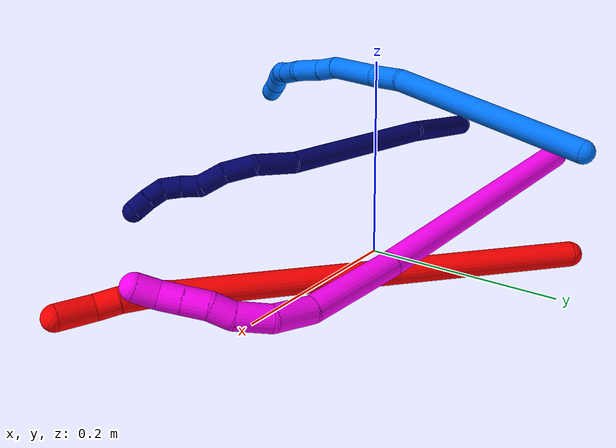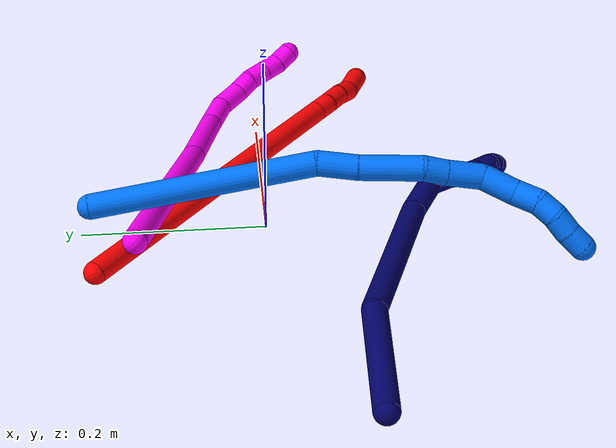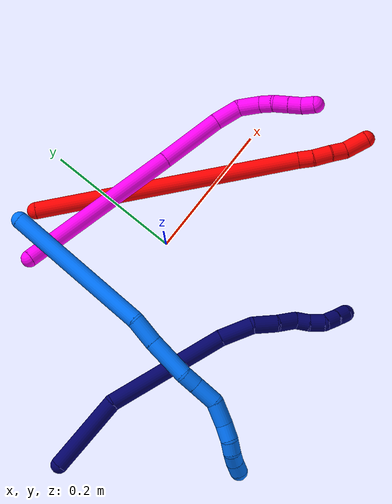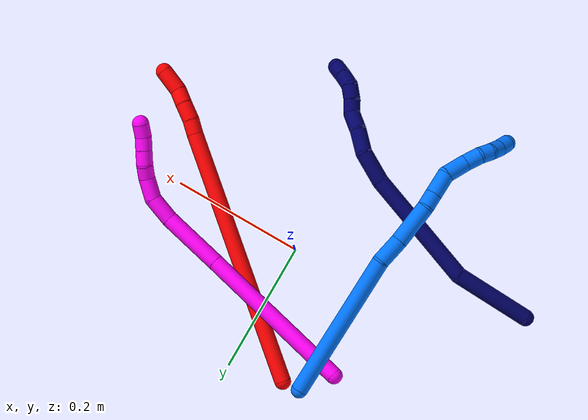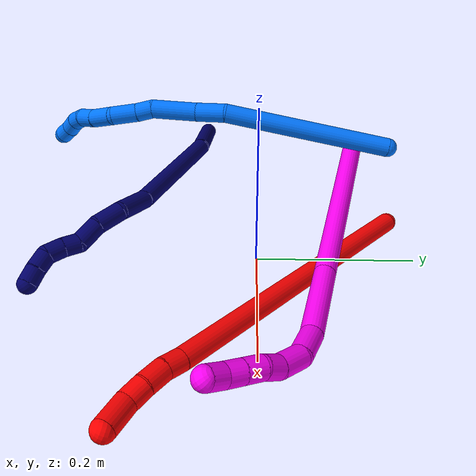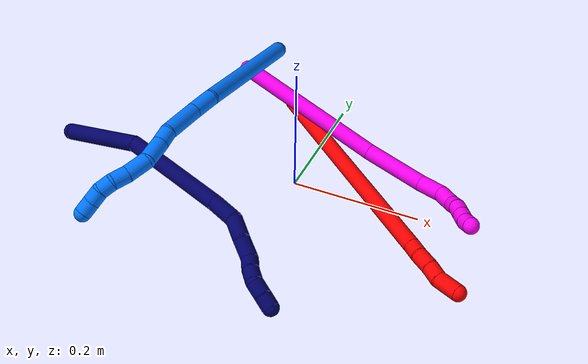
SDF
<sdf version="1.7">
 <world name="default">
  <model name="2">
   <static>0</static>
   <link name="2">
    <collision name="collision-cylinder-e_1_1_4">
     <pose>0.109304 -0.102235 0.127267 0.676757 0.59001 0.213063</pose>
     <geometry><cylinder><radius>0.0125</radius><length>0.39292</length></cylinder></geometry>
     <surface>
      <friction><ode><mu>1.16</mu><mu2>1.16</mu2><slip1>0</slip1><slip2>0</slip2></ode></friction>
      <contact><ode><kp>1e+06</kp><kd>1</kd><max_vel>0</max_vel><min_depth>0.001</min_depth></ode></contact>
     </surface>
    </collision>
    <visual name="visual-cylinder-e_1_1_4">
     <pose>0.109304 -0.102235 0.127267 0.676757 0.59001 0.213063</pose>
     <geometry><cylinder><radius>0.0125</radius><length>0.39292</length></cylinder></geometry>
     <material><ambient>1 0 0 1</ambient></material>
    </visual>
    <collision name="collision-cylinder-e_2_4_5">
     <pose>0.224383 -0.209717 0.262384 0.589149 0.548893 0.170432</pose>
     <geometry><cylinder><radius>0.0125</radius><length>0.022134</length></cylinder></geometry>
     <surface>
      <friction><ode><mu>1.16</mu><mu2>1.16</mu2><slip1>0</slip1><slip2>0</slip2></ode></friction>
      <contact><ode><kp>1e+06</kp><kd>1</kd><max_vel>0</max_vel><min_depth>0.001</min_depth></ode></contact>
     </surface>
    </collision>
    <visual name="visual-cylinder-e_2_4_5">
     <pose>0.224383 -0.209717 0.262384 0.589149 0.548893 0.170432</pose>
     <geometry><cylinder><radius>0.0125</radius><length>0.022134</length></cylinder></geometry>
     <material><ambient>1 0 0 1</ambient></material>
    </visual>
    <collision name="collision-cylinder-e_3_5_6">
     <pose>0.23818 -0.222449 0.277899 0.773605 0.642762 0.269569</pose>
     <geometry><cylinder><radius>0.0125</radius><length>0.026772</length></cylinder></geometry>
     <surface>
      <friction><ode><mu>1.16</mu><mu2>1.16</mu2><slip1>0</slip1><slip2>0</slip2></ode></friction>
      <contact><ode><kp>1e+06</kp><kd>1</kd><max_vel>0</max_vel><min_depth>0.001</min_depth></ode></contact>
     </surface>
    </collision>
    <visual name="visual-cylinder-e_3_5_6">
     <pose>0.23818 -0.222449 0.277899 0.773605 0.642762 0.269569</pose>
     <geometry><cylinder><radius>0.0125</radius><length>0.026772</length></cylinder></geometry>
     <material><ambient>1 0 0 1</ambient></material>
    </visual>
    <collision name="collision-cylinder-e_4_6_7">
     <pose>0.252093 -0.237558 0.291455 0.912857 0.548701 0.274647</pose>
     <geometry><cylinder><radius>0.0125</radius><length>0.022581</length></cylinder></geometry>
     <surface>
      <friction><ode><mu>1.16</mu><mu2>1.16</mu2><slip1>0</slip1><slip2>0</slip2></ode></friction>
      <contact><ode><kp>1e+06</kp><kd>1</kd><max_vel>0</max_vel><min_depth>0.001</min_depth></ode></contact>
     </surface>
    </collision>
    <visual name="visual-cylinder-e_4_6_7">
     <pose>0.252093 -0.237558 0.291455 0.912857 0.548701 0.274647</pose>
     <geometry><cylinder><radius>0.0125</radius><length>0.022581</length></cylinder></geometry>
     <material><ambient>1 0 0 1</ambient></material>
    </visual>
    <collision name="collision-cylinder-e_5_7_2">
     <pose>0.271394 -0.254141 0.304865 0.872675 0.85359 0.417919</pose>
     <geometry><cylinder><radius>0.0125</radius><length>0.035593</length></cylinder></geometry>
     <surface>
      <friction><ode><mu>1.16</mu><mu2>1.16</mu2><slip1>0</slip1><slip2>0</slip2></ode></friction>
      <contact><ode><kp>1e+06</kp><kd>1</kd><max_vel>0</max_vel><min_depth>0.001</min_depth></ode></contact>
     </surface>
    </collision>
    <visual name="visual-cylinder-e_5_7_2">
     <pose>0.271394 -0.254141 0.304865 0.872675 0.85359 0.417919</pose>
     <geometry><cylinder><radius>0.0125</radius><length>0.035593</length></cylinder></geometry>
     <material><ambient>1 0 0 1</ambient></material>
    </visual>
    <collision name="collision-sphere-2">
     <pose>0.284806 -0.263102 0.312383 0 -0 0</pose>
     <geometry><sphere><radius>0.0125</radius></sphere></geometry>
     <surface>
      <friction><ode><mu>1.16</mu><mu2>1.16</mu2><slip1>0</slip1><slip2>0</slip2></ode></friction>
      <contact><ode><kp>1e+06</kp><kd>1</kd><max_vel>0</max_vel><min_depth>0.001</min_depth></ode></contact>
     </surface>
    </collision>
    <visual name="visual-sphere-2">
     <pose>0.284806 -0.263102 0.312383 0 -0 0</pose>
     <geometry><sphere><radius>0.0125</radius></sphere></geometry>
     <material><ambient>1 0 0 1</ambient></material>
    </visual>
    <collision name="collision-sphere-7">
     <pose>0.257982 -0.245181 0.297346 0 -0 0</pose>
     <geometry><sphere><radius>0.0125</radius></sphere></geometry>
     <surface>
      <friction><ode><mu>1.16</mu><mu2>1.16</mu2><slip1>0</slip1><slip2>0</slip2></ode></friction>
      <contact><ode><kp>1e+06</kp><kd>1</kd><max_vel>0</max_vel><min_depth>0.001</min_depth></ode></contact>
     </surface>
    </collision>
    <visual name="visual-sphere-7">
     <pose>0.257982 -0.245181 0.297346 0 -0 0</pose>
     <geometry><sphere><radius>0.0125</radius></sphere></geometry>
     <material><ambient>1 0 0 1</ambient></material>
    </visual>
    <collision name="collision-sphere-6">
     <pose>0.246204 -0.229936 0.285564 0 -0 0</pose>
     <geometry><sphere><radius>0.0125</radius></sphere></geometry>
     <surface>
      <friction><ode><mu>1.16</mu><mu2>1.16</mu2><slip1>0</slip1><slip2>0</slip2></ode></friction>
      <contact><ode><kp>1e+06</kp><kd>1</kd><max_vel>0</max_vel><min_depth>0.001</min_depth></ode></contact>
     </surface>
    </collision>
    <visual name="visual-sphere-6">
     <pose>0.246204 -0.229936 0.285564 0 -0 0</pose>
     <geometry><sphere><radius>0.0125</radius></sphere></geometry>
     <material><ambient>1 0 0 1</ambient></material>
    </visual>
    <collision name="collision-sphere-5">
     <pose>0.230157 -0.214963 0.270234 0 -0 0</pose>
     <geometry><sphere><radius>0.0125</radius></sphere></geometry>
     <surface>
      <friction><ode><mu>1.16</mu><mu2>1.16</mu2><slip1>0</slip1><slip2>0</slip2></ode></friction>
      <contact><ode><kp>1e+06</kp><kd>1</kd><max_vel>0</max_vel><min_depth>0.001</min_depth></ode></contact>
     </surface>
    </collision>
    <visual name="visual-sphere-5">
     <pose>0.230157 -0.214963 0.270234 0 -0 0</pose>
     <geometry><sphere><radius>0.0125</radius></sphere></geometry>
     <material><ambient>1 0 0 1</ambient></material>
    </visual>
    <collision name="collision-sphere-1">
     <geometry><sphere><radius>0.0125</radius></sphere></geometry>
     <surface>
      <friction><ode><mu>1.16</mu><mu2>1.16</mu2><slip1>0</slip1><slip2>0</slip2></ode></friction>
      <contact><ode><kp>1e+06</kp><kd>1</kd><max_vel>0</max_vel><min_depth>0.001</min_depth></ode></contact>
     </surface>
    </collision>
    <visual name="visual-sphere-1">
     <geometry><sphere><radius>0.0125</radius></sphere></geometry>
     <material><ambient>1 0 0 1</ambient></material>
    </visual>
    <collision name="collision-sphere-4">
     <pose>0.218608 -0.204471 0.254535 0 -0 0</pose>
     <geometry><sphere><radius>0.0125</radius></sphere></geometry>
     <surface>
      <friction><ode><mu>1.16</mu><mu2>1.16</mu2><slip1>0</slip1><slip2>0</slip2></ode></friction>
      <contact><ode><kp>1e+06</kp><kd>1</kd><max_vel>0</max_vel><min_depth>0.001</min_depth></ode></contact>
     </surface>
    </collision>
    <visual name="visual-sphere-4">
     <pose>0.218608 -0.204471 0.254535 0 -0 0</pose>
     <geometry><sphere><radius>0.0125</radius></sphere></geometry>
     <material><ambient>1 0 0 1</ambient></material>
    </visual>
    <inertial>
     <pose>0.139286 -0.130355 0.161372 0 -0 0</pose>
     <mass>0.5</mass>
     <inertia>
      <ixx>0.005042</ixx>
      <ixy>0</ixy>
      <ixz>0</ixz>
      <iyy>0.005119</iyy>
      <iyz>0</iyz>
      <izz>-0.000159</izz>
     </inertia>
    </inertial>
   </link>
   <pose>-0.082241 0.179906 0.011491 1.09153 -0.304214 0.246898</pose>
  </model>
  <model name="7">
   <static>0</static>
   <link name="7">
    <collision name="collision-cylinder-e_1_1_4">
     <pose>0.057534 -0.013989 -0.005983 1.97494 1.31228 1.72436</pose>
     <geometry><cylinder><radius>0.0125</radius><length>0.119024</length></cylinder></geometry>
     <surface>
      <friction><ode><mu>1.16</mu><mu2>1.16</mu2><slip1>0</slip1><slip2>0</slip2></ode></friction>
      <contact><ode><kp>1e+06</kp><kd>1</kd><max_vel>0</max_vel><min_depth>0.001</min_depth></ode></contact>
     </surface>
    </collision>
    <visual name="visual-cylinder-e_1_1_4">
     <pose>0.057534 -0.013989 -0.005983 1.97494 1.31228 1.72436</pose>
     <geometry><cylinder><radius>0.0125</radius><length>0.119024</length></cylinder></geometry>
     <material><ambient>0.003922 0 0.403922 1</ambient></material>
    </visual>
    <collision name="collision-cylinder-e_2_4_5">
     <pose>0.188951 -0.079775 -0.017713 1.68131 0.95646 1.04977</pose>
     <geometry><cylinder><radius>0.0125</radius><length>0.180829</length></cylinder></geometry>
     <surface>
      <friction><ode><mu>1.16</mu><mu2>1.16</mu2><slip1>0</slip1><slip2>0</slip2></ode></friction>
      <contact><ode><kp>1e+06</kp><kd>1</kd><max_vel>0</max_vel><min_depth>0.001</min_depth></ode></contact>
     </surface>
    </collision>
    <visual name="visual-cylinder-e_2_4_5">
     <pose>0.188951 -0.079775 -0.017713 1.68131 0.95646 1.04977</pose>
     <geometry><cylinder><radius>0.0125</radius><length>0.180829</length></cylinder></geometry>
     <material><ambient>0.003922 0 0.403922 1</ambient></material>
    </visual>
    <collision name="collision-cylinder-e_3_5_6">
     <pose>0.282017 -0.146573 -0.020149 1.35347 0.895615 0.736511</pose>
     <geometry><cylinder><radius>0.0125</radius><length>0.049151</length></cylinder></geometry>
     <surface>
      <friction><ode><mu>1.16</mu><mu2>1.16</mu2><slip1>0</slip1><slip2>0</slip2></ode></friction>
      <contact><ode><kp>1e+06</kp><kd>1</kd><max_vel>0</max_vel><min_depth>0.001</min_depth></ode></contact>
     </surface>
    </collision>
    <visual name="visual-cylinder-e_3_5_6">
     <pose>0.282017 -0.146573 -0.020149 1.35347 0.895615 0.736511</pose>
     <geometry><cylinder><radius>0.0125</radius><length>0.049151</length></cylinder></geometry>
     <material><ambient>0.003922 0 0.403922 1</ambient></material>
    </visual>
    <collision name="collision-cylinder-e_4_6_7">
     <pose>0.309695 -0.177235 -0.015613 1.49276 0.495644 0.459747</pose>
     <geometry><cylinder><radius>0.0125</radius><length>0.03572</length></cylinder></geometry>
     <surface>
      <friction><ode><mu>1.16</mu><mu2>1.16</mu2><slip1>0</slip1><slip2>0</slip2></ode></friction>
      <contact><ode><kp>1e+06</kp><kd>1</kd><max_vel>0</max_vel><min_depth>0.001</min_depth></ode></contact>
     </surface>
    </collision>
    <visual name="visual-cylinder-e_4_6_7">
     <pose>0.309695 -0.177235 -0.015613 1.49276 0.495644 0.459747</pose>
     <geometry><cylinder><radius>0.0125</radius><length>0.03572</length></cylinder></geometry>
     <material><ambient>0.003922 0 0.403922 1</ambient></material>
    </visual>
    <collision name="collision-cylinder-e_5_7_8">
     <pose>0.324754 -0.206689 -0.017163 1.76939 0.436635 0.529191</pose>
     <geometry><cylinder><radius>0.0125</radius><length>0.031049</length></cylinder></geometry>
     <surface>
      <friction><ode><mu>1.16</mu><mu2>1.16</mu2><slip1>0</slip1><slip2>0</slip2></ode></friction>
      <contact><ode><kp>1e+06</kp><kd>1</kd><max_vel>0</max_vel><min_depth>0.001</min_depth></ode></contact>
     </surface>
    </collision>
    <visual name="visual-cylinder-e_5_7_8">
     <pose>0.324754 -0.206689 -0.017163 1.76939 0.436635 0.529191</pose>
     <geometry><cylinder><radius>0.0125</radius><length>0.031049</length></cylinder></geometry>
     <material><ambient>0.003922 0 0.403922 1</ambient></material>
    </visual>
    <collision name="collision-cylinder-e_6_8_9">
     <pose>0.334744 -0.229594 -0.01653 1.21289 0.338498 0.235962</pose>
     <geometry><cylinder><radius>0.0125</radius><length>0.02063</length></cylinder></geometry>
     <surface>
      <friction><ode><mu>1.16</mu><mu2>1.16</mu2><slip1>0</slip1><slip2>0</slip2></ode></friction>
      <contact><ode><kp>1e+06</kp><kd>1</kd><max_vel>0</max_vel><min_depth>0.001</min_depth></ode></contact>
     </surface>
    </collision>
    <visual name="visual-cylinder-e_6_8_9">
     <pose>0.334744 -0.229594 -0.01653 1.21289 0.338498 0.235962</pose>
     <geometry><cylinder><radius>0.0125</radius><length>0.02063</length></cylinder></geometry>
     <material><ambient>0.003922 0 0.403922 1</ambient></material>
    </visual>
    <collision name="collision-cylinder-e_7_9_10">
     <pose>0.343332 -0.248293 -0.010967 1.34966 0.483761 0.389798</pose>
     <geometry><cylinder><radius>0.0125</radius><length>0.022199</length></cylinder></geometry>
     <surface>
      <friction><ode><mu>1.16</mu><mu2>1.16</mu2><slip1>0</slip1><slip2>0</slip2></ode></friction>
      <contact><ode><kp>1e+06</kp><kd>1</kd><max_vel>0</max_vel><min_depth>0.001</min_depth></ode></contact>
     </surface>
    </collision>
    <visual name="visual-cylinder-e_7_9_10">
     <pose>0.343332 -0.248293 -0.010967 1.34966 0.483761 0.389798</pose>
     <geometry><cylinder><radius>0.0125</radius><length>0.022199</length></cylinder></geometry>
     <material><ambient>0.003922 0 0.403922 1</ambient></material>
    </visual>
    <collision name="collision-cylinder-e_8_10_11">
     <pose>0.354021 -0.266308 -0.012151 1.94801 0.547454 0.783744</pose>
     <geometry><cylinder><radius>0.0125</radius><length>0.021235</length></cylinder></geometry>
     <surface>
      <friction><ode><mu>1.16</mu><mu2>1.16</mu2><slip1>0</slip1><slip2>0</slip2></ode></friction>
      <contact><ode><kp>1e+06</kp><kd>1</kd><max_vel>0</max_vel><min_depth>0.001</min_depth></ode></contact>
     </surface>
    </collision>
    <visual name="visual-cylinder-e_8_10_11">
     <pose>0.354021 -0.266308 -0.012151 1.94801 0.547454 0.783744</pose>
     <geometry><cylinder><radius>0.0125</radius><length>0.021235</length></cylinder></geometry>
     <material><ambient>0.003922 0 0.403922 1</ambient></material>
    </visual>
    <collision name="collision-cylinder-e_9_11_2">
     <pose>0.364339 -0.282568 -0.019657 2.05982 0.495261 0.796821</pose>
     <geometry><cylinder><radius>0.0125</radius><length>0.020165</length></cylinder></geometry>
     <surface>
      <friction><ode><mu>1.16</mu><mu2>1.16</mu2><slip1>0</slip1><slip2>0</slip2></ode></friction>
      <contact><ode><kp>1e+06</kp><kd>1</kd><max_vel>0</max_vel><min_depth>0.001</min_depth></ode></contact>
     </surface>
    </collision>
    <visual name="visual-cylinder-e_9_11_2">
     <pose>0.364339 -0.282568 -0.019657 2.05982 0.495261 0.796821</pose>
     <geometry><cylinder><radius>0.0125</radius><length>0.020165</length></cylinder></geometry>
     <material><ambient>0.003922 0 0.403922 1</ambient></material>
    </visual>
    <collision name="collision-sphere-2">
     <pose>0.369131 -0.290399 -0.023824 0 -0 0</pose>
     <geometry><sphere><radius>0.0125</radius></sphere></geometry>
     <surface>
      <friction><ode><mu>1.16</mu><mu2>1.16</mu2><slip1>0</slip1><slip2>0</slip2></ode></friction>
      <contact><ode><kp>1e+06</kp><kd>1</kd><max_vel>0</max_vel><min_depth>0.001</min_depth></ode></contact>
     </surface>
    </collision>
    <visual name="visual-sphere-2">
     <pose>0.369131 -0.290399 -0.023824 0 -0 0</pose>
     <geometry><sphere><radius>0.0125</radius></sphere></geometry>
     <material><ambient>0.003922 0 0.403922 1</ambient></material>
    </visual>
    <collision name="collision-sphere-11">
     <pose>0.359548 -0.274737 -0.01549 0 -0 0</pose>
     <geometry><sphere><radius>0.0125</radius></sphere></geometry>
     <surface>
      <friction><ode><mu>1.16</mu><mu2>1.16</mu2><slip1>0</slip1><slip2>0</slip2></ode></friction>
      <contact><ode><kp>1e+06</kp><kd>1</kd><max_vel>0</max_vel><min_depth>0.001</min_depth></ode></contact>
     </surface>
    </collision>
    <visual name="visual-sphere-11">
     <pose>0.359548 -0.274737 -0.01549 0 -0 0</pose>
     <geometry><sphere><radius>0.0125</radius></sphere></geometry>
     <material><ambient>0.003922 0 0.403922 1</ambient></material>
    </visual>
    <collision name="collision-sphere-10">
     <pose>0.348495 -0.25788 -0.008811 0 -0 0</pose>
     <geometry><sphere><radius>0.0125</radius></sphere></geometry>
     <surface>
      <friction><ode><mu>1.16</mu><mu2>1.16</mu2><slip1>0</slip1><slip2>0</slip2></ode></friction>
      <contact><ode><kp>1e+06</kp><kd>1</kd><max_vel>0</max_vel><min_depth>0.001</min_depth></ode></contact>
     </surface>
    </collision>
    <visual name="visual-sphere-10">
     <pose>0.348495 -0.25788 -0.008811 0 -0 0</pose>
     <geometry><sphere><radius>0.0125</radius></sphere></geometry>
     <material><ambient>0.003922 0 0.403922 1</ambient></material>
    </visual>
    <collision name="collision-sphere-9">
     <pose>0.33817 -0.238707 -0.013122 0 -0 0</pose>
     <geometry><sphere><radius>0.0125</radius></sphere></geometry>
     <surface>
      <friction><ode><mu>1.16</mu><mu2>1.16</mu2><slip1>0</slip1><slip2>0</slip2></ode></friction>
      <contact><ode><kp>1e+06</kp><kd>1</kd><max_vel>0</max_vel><min_depth>0.001</min_depth></ode></contact>
     </surface>
    </collision>
    <visual name="visual-sphere-9">
     <pose>0.33817 -0.238707 -0.013122 0 -0 0</pose>
     <geometry><sphere><radius>0.0125</radius></sphere></geometry>
     <material><ambient>0.003922 0 0.403922 1</ambient></material>
    </visual>
    <collision name="collision-sphere-4">
     <pose>0.115068 -0.027977 -0.011965 0 -0 0</pose>
     <geometry><sphere><radius>0.0125</radius></sphere></geometry>
     <surface>
      <friction><ode><mu>1.16</mu><mu2>1.16</mu2><slip1>0</slip1><slip2>0</slip2></ode></friction>
      <contact><ode><kp>1e+06</kp><kd>1</kd><max_vel>0</max_vel><min_depth>0.001</min_depth></ode></contact>
     </surface>
    </collision>
    <visual name="visual-sphere-4">
     <pose>0.115068 -0.027977 -0.011965 0 -0 0</pose>
     <geometry><sphere><radius>0.0125</radius></sphere></geometry>
     <material><ambient>0.003922 0 0.403922 1</ambient></material>
    </visual>
    <collision name="collision-sphere-1">
     <geometry><sphere><radius>0.0125</radius></sphere></geometry>
     <surface>
      <friction><ode><mu>1.16</mu><mu2>1.16</mu2><slip1>0</slip1><slip2>0</slip2></ode></friction>
      <contact><ode><kp>1e+06</kp><kd>1</kd><max_vel>0</max_vel><min_depth>0.001</min_depth></ode></contact>
     </surface>
    </collision>
    <visual name="visual-sphere-1">
     <geometry><sphere><radius>0.0125</radius></sphere></geometry>
     <material><ambient>0.003922 0 0.403922 1</ambient></material>
    </visual>
    <collision name="collision-sphere-8">
     <pose>0.331319 -0.22048 -0.019939 0 -0 0</pose>
     <geometry><sphere><radius>0.0125</radius></sphere></geometry>
     <surface>
      <friction><ode><mu>1.16</mu><mu2>1.16</mu2><slip1>0</slip1><slip2>0</slip2></ode></friction>
      <contact><ode><kp>1e+06</kp><kd>1</kd><max_vel>0</max_vel><min_depth>0.001</min_depth></ode></contact>
     </surface>
    </collision>
    <visual name="visual-sphere-8">
     <pose>0.331319 -0.22048 -0.019939 0 -0 0</pose>
     <geometry><sphere><radius>0.0125</radius></sphere></geometry>
     <material><ambient>0.003922 0 0.403922 1</ambient></material>
    </visual>
    <collision name="collision-sphere-5">
     <pose>0.262834 -0.131574 -0.023461 0 -0 0</pose>
     <geometry><sphere><radius>0.0125</radius></sphere></geometry>
     <surface>
      <friction><ode><mu>1.16</mu><mu2>1.16</mu2><slip1>0</slip1><slip2>0</slip2></ode></friction>
      <contact><ode><kp>1e+06</kp><kd>1</kd><max_vel>0</max_vel><min_depth>0.001</min_depth></ode></contact>
     </surface>
    </collision>
    <visual name="visual-sphere-5">
     <pose>0.262834 -0.131574 -0.023461 0 -0 0</pose>
     <geometry><sphere><radius>0.0125</radius></sphere></geometry>
     <material><ambient>0.003922 0 0.403922 1</ambient></material>
    </visual>
    <collision name="collision-sphere-6">
     <pose>0.301201 -0.161572 -0.016837 0 -0 0</pose>
     <geometry><sphere><radius>0.0125</radius></sphere></geometry>
     <surface>
      <friction><ode><mu>1.16</mu><mu2>1.16</mu2><slip1>0</slip1><slip2>0</slip2></ode></friction>
      <contact><ode><kp>1e+06</kp><kd>1</kd><max_vel>0</max_vel><min_depth>0.001</min_depth></ode></contact>
     </surface>
    </collision>
    <visual name="visual-sphere-6">
     <pose>0.301201 -0.161572 -0.016837 0 -0 0</pose>
     <geometry><sphere><radius>0.0125</radius></sphere></geometry>
     <material><ambient>0.003922 0 0.403922 1</ambient></material>
    </visual>
    <collision name="collision-sphere-7">
     <pose>0.318189 -0.192898 -0.014388 0 -0 0</pose>
     <geometry><sphere><radius>0.0125</radius></sphere></geometry>
     <surface>
      <friction><ode><mu>1.16</mu><mu2>1.16</mu2><slip1>0</slip1><slip2>0</slip2></ode></friction>
      <contact><ode><kp>1e+06</kp><kd>1</kd><max_vel>0</max_vel><min_depth>0.001</min_depth></ode></contact>
     </surface>
    </collision>
    <visual name="visual-sphere-7">
     <pose>0.318189 -0.192898 -0.014388 0 -0 0</pose>
     <geometry><sphere><radius>0.0125</radius></sphere></geometry>
     <material><ambient>0.003922 0 0.403922 1</ambient></material>
    </visual>
    <inertial>
     <pose>0.210828 -0.115289 -0.01447 0 -0 0</pose>
     <mass>0.5</mass>
     <inertia>
      <ixx>0.000482</ixx>
      <ixy>0</ixy>
      <ixz>0</ixz>
      <iyy>0.000747</iyy>
      <iyz>0</iyz>
      <izz>-0.000226</izz>
     </inertia>
    </inertial>
   </link>
   <pose>-0.346633 -0.082161 0.045863 0.557555 -0.358289 0.112781</pose>
  </model>
  <model name="10">
   <static>0</static>
   <link name="10">
    <collision name="collision-cylinder-e_1_1_4">
     <pose>0.11326 -0.043319 0.024483 1.05638 1.15685 0.727988</pose>
     <geometry><cylinder><radius>0.0125</radius><length>0.247417</length></cylinder></geometry>
     <surface>
      <friction><ode><mu>1.16</mu><mu2>1.16</mu2><slip1>0</slip1><slip2>0</slip2></ode></friction>
      <contact><ode><kp>1e+06</kp><kd>1</kd><max_vel>0</max_vel><min_depth>0.001</min_depth></ode></contact>
     </surface>
    </collision>
    <visual name="visual-cylinder-e_1_1_4">
     <pose>0.11326 -0.043319 0.024483 1.05638 1.15685 0.727988</pose>
     <geometry><cylinder><radius>0.0125</radius><length>0.247417</length></cylinder></geometry>
     <material><ambient>1 0 0.964706 1</ambient></material>
    </visual>
    <collision name="collision-cylinder-e_2_4_5">
     <pose>0.271781 -0.1017 0.055953 1.13642 1.21917 0.838762</pose>
     <geometry><cylinder><radius>0.0125</radius><length>0.09642</length></cylinder></geometry>
     <surface>
      <friction><ode><mu>1.16</mu><mu2>1.16</mu2><slip1>0</slip1><slip2>0</slip2></ode></friction>
      <contact><ode><kp>1e+06</kp><kd>1</kd><max_vel>0</max_vel><min_depth>0.001</min_depth></ode></contact>
     </surface>
    </collision>
    <visual name="visual-cylinder-e_2_4_5">
     <pose>0.271781 -0.1017 0.055953 1.13642 1.21917 0.838762</pose>
     <geometry><cylinder><radius>0.0125</radius><length>0.09642</length></cylinder></geometry>
     <material><ambient>1 0 0.964706 1</ambient></material>
    </visual>
    <collision name="collision-cylinder-e_3_5_6">
     <pose>0.336541 -0.118221 0.064468 0.762315 1.46295 0.690597</pose>
     <geometry><cylinder><radius>0.0125</radius><length>0.039228</length></cylinder></geometry>
     <surface>
      <friction><ode><mu>1.16</mu><mu2>1.16</mu2><slip1>0</slip1><slip2>0</slip2></ode></friction>
      <contact><ode><kp>1e+06</kp><kd>1</kd><max_vel>0</max_vel><min_depth>0.001</min_depth></ode></contact>
     </surface>
    </collision>
    <visual name="visual-cylinder-e_3_5_6">
     <pose>0.336541 -0.118221 0.064468 0.762315 1.46295 0.690597</pose>
     <geometry><cylinder><radius>0.0125</radius><length>0.039228</length></cylinder></geometry>
     <material><ambient>1 0 0.964706 1</ambient></material>
    </visual>
    <collision name="collision-cylinder-e_4_6_7">
     <pose>0.37129 -0.114815 0.070146 -0.864253 1.17376 -0.595216</pose>
     <geometry><cylinder><radius>0.0125</radius><length>0.03307</length></cylinder></geometry>
     <surface>
      <friction><ode><mu>1.16</mu><mu2>1.16</mu2><slip1>0</slip1><slip2>0</slip2></ode></friction>
      <contact><ode><kp>1e+06</kp><kd>1</kd><max_vel>0</max_vel><min_depth>0.001</min_depth></ode></contact>
     </surface>
    </collision>
    <visual name="visual-cylinder-e_4_6_7">
     <pose>0.37129 -0.114815 0.070146 -0.864253 1.17376 -0.595216</pose>
     <geometry><cylinder><radius>0.0125</radius><length>0.03307</length></cylinder></geometry>
     <material><ambient>1 0 0.964706 1</ambient></material>
    </visual>
    <collision name="collision-cylinder-e_5_7_8">
     <pose>0.395173 -0.10411 0.075281 -1.40401 0.969437 -0.838005</pose>
     <geometry><cylinder><radius>0.0125</radius><length>0.020942</length></cylinder></geometry>
     <surface>
      <friction><ode><mu>1.16</mu><mu2>1.16</mu2><slip1>0</slip1><slip2>0</slip2></ode></friction>
      <contact><ode><kp>1e+06</kp><kd>1</kd><max_vel>0</max_vel><min_depth>0.001</min_depth></ode></contact>
     </surface>
    </collision>
    <visual name="visual-cylinder-e_5_7_8">
     <pose>0.395173 -0.10411 0.075281 -1.40401 0.969437 -0.838005</pose>
     <geometry><cylinder><radius>0.0125</radius><length>0.020942</length></cylinder></geometry>
     <material><ambient>1 0 0.964706 1</ambient></material>
    </visual>
    <collision name="collision-cylinder-e_6_8_9">
     <pose>0.41274 -0.092931 0.080168 -0.939365 0.933542 -0.5008</pose>
     <geometry><cylinder><radius>0.0125</radius><length>0.022228</length></cylinder></geometry>
     <surface>
      <friction><ode><mu>1.16</mu><mu2>1.16</mu2><slip1>0</slip1><slip2>0</slip2></ode></friction>
      <contact><ode><kp>1e+06</kp><kd>1</kd><max_vel>0</max_vel><min_depth>0.001</min_depth></ode></contact>
     </surface>
    </collision>
    <visual name="visual-cylinder-e_6_8_9">
     <pose>0.41274 -0.092931 0.080168 -0.939365 0.933542 -0.5008</pose>
     <geometry><cylinder><radius>0.0125</radius><length>0.022228</length></cylinder></geometry>
     <material><ambient>1 0 0.964706 1</ambient></material>
    </visual>
    <collision name="collision-cylinder-e_7_9_10">
     <pose>0.429751 -0.082724 0.087614 -0.941708 0.930284 -0.500244</pose>
     <geometry><cylinder><radius>0.0125</radius><length>0.020151</length></cylinder></geometry>
     <surface>
      <friction><ode><mu>1.16</mu><mu2>1.16</mu2><slip1>0</slip1><slip2>0</slip2></ode></friction>
      <contact><ode><kp>1e+06</kp><kd>1</kd><max_vel>0</max_vel><min_depth>0.001</min_depth></ode></contact>
     </surface>
    </collision>
    <visual name="visual-cylinder-e_7_9_10">
     <pose>0.429751 -0.082724 0.087614 -0.941708 0.930284 -0.500244</pose>
     <geometry><cylinder><radius>0.0125</radius><length>0.020151</length></cylinder></geometry>
     <material><ambient>1 0 0.964706 1</ambient></material>
    </visual>
    <collision name="collision-cylinder-e_8_10_2">
     <pose>0.446696 -0.072885 0.092633 -1.28205 1.04163 -0.808847</pose>
     <geometry><cylinder><radius>0.0125</radius><length>0.020544</length></cylinder></geometry>
     <surface>
      <friction><ode><mu>1.16</mu><mu2>1.16</mu2><slip1>0</slip1><slip2>0</slip2></ode></friction>
      <contact><ode><kp>1e+06</kp><kd>1</kd><max_vel>0</max_vel><min_depth>0.001</min_depth></ode></contact>
     </surface>
    </collision>
    <visual name="visual-cylinder-e_8_10_2">
     <pose>0.446696 -0.072885 0.092633 -1.28205 1.04163 -0.808847</pose>
     <geometry><cylinder><radius>0.0125</radius><length>0.020544</length></cylinder></geometry>
     <material><ambient>1 0 0.964706 1</ambient></material>
    </visual>
    <collision name="collision-sphere-2">
     <pose>0.455563 -0.067914 0.09411 0 -0 0</pose>
     <geometry><sphere><radius>0.0125</radius></sphere></geometry>
     <surface>
      <friction><ode><mu>1.16</mu><mu2>1.16</mu2><slip1>0</slip1><slip2>0</slip2></ode></friction>
      <contact><ode><kp>1e+06</kp><kd>1</kd><max_vel>0</max_vel><min_depth>0.001</min_depth></ode></contact>
     </surface>
    </collision>
    <visual name="visual-sphere-2">
     <pose>0.455563 -0.067914 0.09411 0 -0 0</pose>
     <geometry><sphere><radius>0.0125</radius></sphere></geometry>
     <material><ambient>1 0 0.964706 1</ambient></material>
    </visual>
    <collision name="collision-sphere-10">
     <pose>0.437829 -0.077856 0.091157 0 -0 0</pose>
     <geometry><sphere><radius>0.0125</radius></sphere></geometry>
     <surface>
      <friction><ode><mu>1.16</mu><mu2>1.16</mu2><slip1>0</slip1><slip2>0</slip2></ode></friction>
      <contact><ode><kp>1e+06</kp><kd>1</kd><max_vel>0</max_vel><min_depth>0.001</min_depth></ode></contact>
     </surface>
    </collision>
    <visual name="visual-sphere-10">
     <pose>0.437829 -0.077856 0.091157 0 -0 0</pose>
     <geometry><sphere><radius>0.0125</radius></sphere></geometry>
     <material><ambient>1 0 0.964706 1</ambient></material>
    </visual>
    <collision name="collision-sphere-9">
     <pose>0.421672 -0.087593 0.084071 0 -0 0</pose>
     <geometry><sphere><radius>0.0125</radius></sphere></geometry>
     <surface>
      <friction><ode><mu>1.16</mu><mu2>1.16</mu2><slip1>0</slip1><slip2>0</slip2></ode></friction>
      <contact><ode><kp>1e+06</kp><kd>1</kd><max_vel>0</max_vel><min_depth>0.001</min_depth></ode></contact>
     </surface>
    </collision>
    <visual name="visual-sphere-9">
     <pose>0.421672 -0.087593 0.084071 0 -0 0</pose>
     <geometry><sphere><radius>0.0125</radius></sphere></geometry>
     <material><ambient>1 0 0.964706 1</ambient></material>
    </visual>
    <collision name="collision-sphere-4">
     <pose>0.226521 -0.086637 0.048966 0 -0 0</pose>
     <geometry><sphere><radius>0.0125</radius></sphere></geometry>
     <surface>
      <friction><ode><mu>1.16</mu><mu2>1.16</mu2><slip1>0</slip1><slip2>0</slip2></ode></friction>
      <contact><ode><kp>1e+06</kp><kd>1</kd><max_vel>0</max_vel><min_depth>0.001</min_depth></ode></contact>
     </surface>
    </collision>
    <visual name="visual-sphere-4">
     <pose>0.226521 -0.086637 0.048966 0 -0 0</pose>
     <geometry><sphere><radius>0.0125</radius></sphere></geometry>
     <material><ambient>1 0 0.964706 1</ambient></material>
    </visual>
    <collision name="collision-sphere-1">
     <geometry><sphere><radius>0.0125</radius></sphere></geometry>
     <surface>
      <friction><ode><mu>1.16</mu><mu2>1.16</mu2><slip1>0</slip1><slip2>0</slip2></ode></friction>
      <contact><ode><kp>1e+06</kp><kd>1</kd><max_vel>0</max_vel><min_depth>0.001</min_depth></ode></contact>
     </surface>
    </collision>
    <visual name="visual-sphere-1">
     <geometry><sphere><radius>0.0125</radius></sphere></geometry>
     <material><ambient>1 0 0.964706 1</ambient></material>
    </visual>
    <collision name="collision-sphere-8">
     <pose>0.403807 -0.098268 0.076264 0 -0 0</pose>
     <geometry><sphere><radius>0.0125</radius></sphere></geometry>
     <surface>
      <friction><ode><mu>1.16</mu><mu2>1.16</mu2><slip1>0</slip1><slip2>0</slip2></ode></friction>
      <contact><ode><kp>1e+06</kp><kd>1</kd><max_vel>0</max_vel><min_depth>0.001</min_depth></ode></contact>
     </surface>
    </collision>
    <visual name="visual-sphere-8">
     <pose>0.403807 -0.098268 0.076264 0 -0 0</pose>
     <geometry><sphere><radius>0.0125</radius></sphere></geometry>
     <material><ambient>1 0 0.964706 1</ambient></material>
    </visual>
    <collision name="collision-sphere-5">
     <pose>0.317041 -0.116763 0.062941 0 -0 0</pose>
     <geometry><sphere><radius>0.0125</radius></sphere></geometry>
     <surface>
      <friction><ode><mu>1.16</mu><mu2>1.16</mu2><slip1>0</slip1><slip2>0</slip2></ode></friction>
      <contact><ode><kp>1e+06</kp><kd>1</kd><max_vel>0</max_vel><min_depth>0.001</min_depth></ode></contact>
     </surface>
    </collision>
    <visual name="visual-sphere-5">
     <pose>0.317041 -0.116763 0.062941 0 -0 0</pose>
     <geometry><sphere><radius>0.0125</radius></sphere></geometry>
     <material><ambient>1 0 0.964706 1</ambient></material>
    </visual>
    <collision name="collision-sphere-6">
     <pose>0.356041 -0.119679 0.065995 0 -0 0</pose>
     <geometry><sphere><radius>0.0125</radius></sphere></geometry>
     <surface>
      <friction><ode><mu>1.16</mu><mu2>1.16</mu2><slip1>0</slip1><slip2>0</slip2></ode></friction>
      <contact><ode><kp>1e+06</kp><kd>1</kd><max_vel>0</max_vel><min_depth>0.001</min_depth></ode></contact>
     </surface>
    </collision>
    <visual name="visual-sphere-6">
     <pose>0.356041 -0.119679 0.065995 0 -0 0</pose>
     <geometry><sphere><radius>0.0125</radius></sphere></geometry>
     <material><ambient>1 0 0.964706 1</ambient></material>
    </visual>
    <collision name="collision-sphere-7">
     <pose>0.386539 -0.109952 0.074297 0 -0 0</pose>
     <geometry><sphere><radius>0.0125</radius></sphere></geometry>
     <surface>
      <friction><ode><mu>1.16</mu><mu2>1.16</mu2><slip1>0</slip1><slip2>0</slip2></ode></friction>
      <contact><ode><kp>1e+06</kp><kd>1</kd><max_vel>0</max_vel><min_depth>0.001</min_depth></ode></contact>
     </surface>
    </collision>
    <visual name="visual-sphere-7">
     <pose>0.386539 -0.109952 0.074297 0 -0 0</pose>
     <geometry><sphere><radius>0.0125</radius></sphere></geometry>
     <material><ambient>1 0 0.964706 1</ambient></material>
    </visual>
    <inertial>
     <pose>0.22999 -0.072737 0.046656 0 -0 0</pose>
     <mass>0.5</mass>
     <inertia>
      <ixx>0.000798</ixx>
      <ixy>0</ixy>
      <ixz>0</ixz>
      <iyy>0.001582</iyy>
      <iyz>0</iyz>
      <izz>-0.000781</izz>
     </inertia>
    </inertial>
   </link>
   <pose>-0.142992 0.132831 0.091674 2.38727 -0.177297 -0.359427</pose>
  </model>
  <model name="14">
   <static>0</static>
   <link name="14">
    <collision name="collision-cylinder-e_1_1_4">
     <pose>-0.043082 -0.099647 -0.025053 1.8171 -0.397028 -0.504986</pose>
     <geometry><cylinder><radius>0.0125</radius><length>0.222828</length></cylinder></geometry>
     <surface>
      <friction><ode><mu>1.16</mu><mu2>1.16</mu2><slip1>0</slip1><slip2>0</slip2></ode></friction>
      <contact><ode><kp>1e+06</kp><kd>1</kd><max_vel>0</max_vel><min_depth>0.001</min_depth></ode></contact>
     </surface>
    </collision>
    <visual name="visual-cylinder-e_1_1_4">
     <pose>-0.043082 -0.099647 -0.025053 1.8171 -0.397028 -0.504986</pose>
     <geometry><cylinder><radius>0.0125</radius><length>0.222828</length></cylinder></geometry>
     <material><ambient>0 0.462745 1 1</ambient></material>
    </visual>
    <collision name="collision-cylinder-e_2_4_5">
     <pose>-0.088908 -0.218903 -0.052044 1.66935 -0.138427 -0.152736</pose>
     <geometry><cylinder><radius>0.0125</radius><length>0.03979</length></cylinder></geometry>
     <surface>
      <friction><ode><mu>1.16</mu><mu2>1.16</mu2><slip1>0</slip1><slip2>0</slip2></ode></friction>
      <contact><ode><kp>1e+06</kp><kd>1</kd><max_vel>0</max_vel><min_depth>0.001</min_depth></ode></contact>
     </surface>
    </collision>
    <visual name="visual-cylinder-e_2_4_5">
     <pose>-0.088908 -0.218903 -0.052044 1.66935 -0.138427 -0.152736</pose>
     <geometry><cylinder><radius>0.0125</radius><length>0.03979</length></cylinder></geometry>
     <material><ambient>0 0.462745 1 1</ambient></material>
    </visual>
    <collision name="collision-cylinder-e_3_5_6">
     <pose>-0.098766 -0.268032 -0.05761 1.69307 -0.234723 -0.264996</pose>
     <geometry><cylinder><radius>0.0125</radius><length>0.061162</length></cylinder></geometry>
     <surface>
      <friction><ode><mu>1.16</mu><mu2>1.16</mu2><slip1>0</slip1><slip2>0</slip2></ode></friction>
      <contact><ode><kp>1e+06</kp><kd>1</kd><max_vel>0</max_vel><min_depth>0.001</min_depth></ode></contact>
     </surface>
    </collision>
    <visual name="visual-cylinder-e_3_5_6">
     <pose>-0.098766 -0.268032 -0.05761 1.69307 -0.234723 -0.264996</pose>
     <geometry><cylinder><radius>0.0125</radius><length>0.061162</length></cylinder></geometry>
     <material><ambient>0 0.462745 1 1</ambient></material>
    </visual>
    <collision name="collision-cylinder-e_4_6_7">
     <pose>-0.108049 -0.308356 -0.059382 1.40067 -0.195483 -0.164918</pose>
     <geometry><cylinder><radius>0.0125</radius><length>0.022349</length></cylinder></geometry>
     <surface>
      <friction><ode><mu>1.16</mu><mu2>1.16</mu2><slip1>0</slip1><slip2>0</slip2></ode></friction>
      <contact><ode><kp>1e+06</kp><kd>1</kd><max_vel>0</max_vel><min_depth>0.001</min_depth></ode></contact>
     </surface>
    </collision>
    <visual name="visual-cylinder-e_4_6_7">
     <pose>-0.108049 -0.308356 -0.059382 1.40067 -0.195483 -0.164918</pose>
     <geometry><cylinder><radius>0.0125</radius><length>0.022349</length></cylinder></geometry>
     <material><ambient>0 0.462745 1 1</ambient></material>
    </visual>
    <collision name="collision-cylinder-e_5_7_8">
     <pose>-0.114428 -0.336377 -0.056051 1.48535 -0.23888 -0.219457</pose>
     <geometry><cylinder><radius>0.0125</radius><length>0.035571</length></cylinder></geometry>
     <surface>
      <friction><ode><mu>1.16</mu><mu2>1.16</mu2><slip1>0</slip1><slip2>0</slip2></ode></friction>
      <contact><ode><kp>1e+06</kp><kd>1</kd><max_vel>0</max_vel><min_depth>0.001</min_depth></ode></contact>
     </surface>
    </collision>
    <visual name="visual-cylinder-e_5_7_8">
     <pose>-0.114428 -0.336377 -0.056051 1.48535 -0.23888 -0.219457</pose>
     <geometry><cylinder><radius>0.0125</radius><length>0.035571</length></cylinder></geometry>
     <material><ambient>0 0.462745 1 1</ambient></material>
    </visual>
    <collision name="collision-cylinder-e_6_8_9">
     <pose>-0.114981 -0.370314 -0.05478 1.58296 0.21519 0.217802</pose>
     <geometry><cylinder><radius>0.0125</radius><length>0.034232</length></cylinder></geometry>
     <surface>
      <friction><ode><mu>1.16</mu><mu2>1.16</mu2><slip1>0</slip1><slip2>0</slip2></ode></friction>
      <contact><ode><kp>1e+06</kp><kd>1</kd><max_vel>0</max_vel><min_depth>0.001</min_depth></ode></contact>
     </surface>
    </collision>
    <visual name="visual-cylinder-e_6_8_9">
     <pose>-0.114981 -0.370314 -0.05478 1.58296 0.21519 0.217802</pose>
     <geometry><cylinder><radius>0.0125</radius><length>0.034232</length></cylinder></geometry>
     <material><ambient>0 0.462745 1 1</ambient></material>
    </visual>
    <collision name="collision-cylinder-e_7_9_10">
     <pose>-0.108698 -0.398626 -0.056746 1.72169 0.220509 0.256205</pose>
     <geometry><cylinder><radius>0.0125</radius><length>0.024033</length></cylinder></geometry>
     <surface>
      <friction><ode><mu>1.16</mu><mu2>1.16</mu2><slip1>0</slip1><slip2>0</slip2></ode></friction>
      <contact><ode><kp>1e+06</kp><kd>1</kd><max_vel>0</max_vel><min_depth>0.001</min_depth></ode></contact>
     </surface>
    </collision>
    <visual name="visual-cylinder-e_7_9_10">
     <pose>-0.108698 -0.398626 -0.056746 1.72169 0.220509 0.256205</pose>
     <geometry><cylinder><radius>0.0125</radius><length>0.024033</length></cylinder></geometry>
     <material><ambient>0 0.462745 1 1</ambient></material>
    </visual>
    <collision name="collision-cylinder-e_8_10_11">
     <pose>-0.101787 -0.419199 -0.057468 1.45544 0.442402 0.395424</pose>
     <geometry><cylinder><radius>0.0125</radius><length>0.020006</length></cylinder></geometry>
     <surface>
      <friction><ode><mu>1.16</mu><mu2>1.16</mu2><slip1>0</slip1><slip2>0</slip2></ode></friction>
      <contact><ode><kp>1e+06</kp><kd>1</kd><max_vel>0</max_vel><min_depth>0.001</min_depth></ode></contact>
     </surface>
    </collision>
    <visual name="visual-cylinder-e_8_10_11">
     <pose>-0.101787 -0.419199 -0.057468 1.45544 0.442402 0.395424</pose>
     <geometry><cylinder><radius>0.0125</radius><length>0.020006</length></cylinder></geometry>
     <material><ambient>0 0.462745 1 1</ambient></material>
    </visual>
    <collision name="collision-cylinder-e_9_11_12">
     <pose>-0.09307 -0.436199 -0.052408 1.10625 0.459096 0.286562</pose>
     <geometry><cylinder><radius>0.0125</radius><length>0.020013</length></cylinder></geometry>
     <surface>
      <friction><ode><mu>1.16</mu><mu2>1.16</mu2><slip1>0</slip1><slip2>0</slip2></ode></friction>
      <contact><ode><kp>1e+06</kp><kd>1</kd><max_vel>0</max_vel><min_depth>0.001</min_depth></ode></contact>
     </surface>
    </collision>
    <visual name="visual-cylinder-e_9_11_12">
     <pose>-0.09307 -0.436199 -0.052408 1.10625 0.459096 0.286562</pose>
     <geometry><cylinder><radius>0.0125</radius><length>0.020013</length></cylinder></geometry>
     <material><ambient>0 0.462745 1 1</ambient></material>
    </visual>
    <collision name="collision-cylinder-e_10_12_2">
     <pose>-0.085258 -0.452876 -0.044676 1.16561 0.344317 0.228243</pose>
     <geometry><cylinder><radius>0.0125</radius><length>0.020015</length></cylinder></geometry>
     <surface>
      <friction><ode><mu>1.16</mu><mu2>1.16</mu2><slip1>0</slip1><slip2>0</slip2></ode></friction>
      <contact><ode><kp>1e+06</kp><kd>1</kd><max_vel>0</max_vel><min_depth>0.001</min_depth></ode></contact>
     </surface>
    </collision>
    <visual name="visual-cylinder-e_10_12_2">
     <pose>-0.085258 -0.452876 -0.044676 1.16561 0.344317 0.228243</pose>
     <geometry><cylinder><radius>0.0125</radius><length>0.020015</length></cylinder></geometry>
     <material><ambient>0 0.462745 1 1</ambient></material>
    </visual>
    <collision name="collision-sphere-2">
     <pose>-0.08188 -0.461533 -0.040963 0 -0 0</pose>
     <geometry><sphere><radius>0.0125</radius></sphere></geometry>
     <surface>
      <friction><ode><mu>1.16</mu><mu2>1.16</mu2><slip1>0</slip1><slip2>0</slip2></ode></friction>
      <contact><ode><kp>1e+06</kp><kd>1</kd><max_vel>0</max_vel><min_depth>0.001</min_depth></ode></contact>
     </surface>
    </collision>
    <visual name="visual-sphere-2">
     <pose>-0.08188 -0.461533 -0.040963 0 -0 0</pose>
     <geometry><sphere><radius>0.0125</radius></sphere></geometry>
     <material><ambient>0 0.462745 1 1</ambient></material>
    </visual>
    <collision name="collision-sphere-12">
     <pose>-0.088636 -0.444219 -0.04839 0 -0 0</pose>
     <geometry><sphere><radius>0.0125</radius></sphere></geometry>
     <surface>
      <friction><ode><mu>1.16</mu><mu2>1.16</mu2><slip1>0</slip1><slip2>0</slip2></ode></friction>
      <contact><ode><kp>1e+06</kp><kd>1</kd><max_vel>0</max_vel><min_depth>0.001</min_depth></ode></contact>
     </surface>
    </collision>
    <visual name="visual-sphere-12">
     <pose>-0.088636 -0.444219 -0.04839 0 -0 0</pose>
     <geometry><sphere><radius>0.0125</radius></sphere></geometry>
     <material><ambient>0 0.462745 1 1</ambient></material>
    </visual>
    <collision name="collision-sphere-11">
     <pose>-0.097505 -0.428179 -0.056427 0 -0 0</pose>
     <geometry><sphere><radius>0.0125</radius></sphere></geometry>
     <surface>
      <friction><ode><mu>1.16</mu><mu2>1.16</mu2><slip1>0</slip1><slip2>0</slip2></ode></friction>
      <contact><ode><kp>1e+06</kp><kd>1</kd><max_vel>0</max_vel><min_depth>0.001</min_depth></ode></contact>
     </surface>
    </collision>
    <visual name="visual-sphere-11">
     <pose>-0.097505 -0.428179 -0.056427 0 -0 0</pose>
     <geometry><sphere><radius>0.0125</radius></sphere></geometry>
     <material><ambient>0 0.462745 1 1</ambient></material>
    </visual>
    <collision name="collision-sphere-10">
     <pose>-0.10607 -0.410219 -0.058508 0 -0 0</pose>
     <geometry><sphere><radius>0.0125</radius></sphere></geometry>
     <surface>
      <friction><ode><mu>1.16</mu><mu2>1.16</mu2><slip1>0</slip1><slip2>0</slip2></ode></friction>
      <contact><ode><kp>1e+06</kp><kd>1</kd><max_vel>0</max_vel><min_depth>0.001</min_depth></ode></contact>
     </surface>
    </collision>
    <visual name="visual-sphere-10">
     <pose>-0.10607 -0.410219 -0.058508 0 -0 0</pose>
     <geometry><sphere><radius>0.0125</radius></sphere></geometry>
     <material><ambient>0 0.462745 1 1</ambient></material>
    </visual>
    <collision name="collision-sphere-9">
     <pose>-0.111326 -0.387034 -0.054983 0 -0 0</pose>
     <geometry><sphere><radius>0.0125</radius></sphere></geometry>
     <surface>
      <friction><ode><mu>1.16</mu><mu2>1.16</mu2><slip1>0</slip1><slip2>0</slip2></ode></friction>
      <contact><ode><kp>1e+06</kp><kd>1</kd><max_vel>0</max_vel><min_depth>0.001</min_depth></ode></contact>
     </surface>
    </collision>
    <visual name="visual-sphere-9">
     <pose>-0.111326 -0.387034 -0.054983 0 -0 0</pose>
     <geometry><sphere><radius>0.0125</radius></sphere></geometry>
     <material><ambient>0 0.462745 1 1</ambient></material>
    </visual>
    <collision name="collision-sphere-4">
     <pose>-0.086163 -0.199293 -0.050105 0 -0 0</pose>
     <geometry><sphere><radius>0.0125</radius></sphere></geometry>
     <surface>
      <friction><ode><mu>1.16</mu><mu2>1.16</mu2><slip1>0</slip1><slip2>0</slip2></ode></friction>
      <contact><ode><kp>1e+06</kp><kd>1</kd><max_vel>0</max_vel><min_depth>0.001</min_depth></ode></contact>
     </surface>
    </collision>
    <visual name="visual-sphere-4">
     <pose>-0.086163 -0.199293 -0.050105 0 -0 0</pose>
     <geometry><sphere><radius>0.0125</radius></sphere></geometry>
     <material><ambient>0 0.462745 1 1</ambient></material>
    </visual>
    <collision name="collision-sphere-1">
     <geometry><sphere><radius>0.0125</radius></sphere></geometry>
     <surface>
      <friction><ode><mu>1.16</mu><mu2>1.16</mu2><slip1>0</slip1><slip2>0</slip2></ode></friction>
      <contact><ode><kp>1e+06</kp><kd>1</kd><max_vel>0</max_vel><min_depth>0.001</min_depth></ode></contact>
     </surface>
    </collision>
    <visual name="visual-sphere-1">
     <geometry><sphere><radius>0.0125</radius></sphere></geometry>
     <material><ambient>0 0.462745 1 1</ambient></material>
    </visual>
    <collision name="collision-sphere-8">
     <pose>-0.118636 -0.353594 -0.054577 0 -0 0</pose>
     <geometry><sphere><radius>0.0125</radius></sphere></geometry>
     <surface>
      <friction><ode><mu>1.16</mu><mu2>1.16</mu2><slip1>0</slip1><slip2>0</slip2></ode></friction>
      <contact><ode><kp>1e+06</kp><kd>1</kd><max_vel>0</max_vel><min_depth>0.001</min_depth></ode></contact>
     </surface>
    </collision>
    <visual name="visual-sphere-8">
     <pose>-0.118636 -0.353594 -0.054577 0 -0 0</pose>
     <geometry><sphere><radius>0.0125</radius></sphere></geometry>
     <material><ambient>0 0.462745 1 1</ambient></material>
    </visual>
    <collision name="collision-sphere-5">
     <pose>-0.091654 -0.238512 -0.053983 0 -0 0</pose>
     <geometry><sphere><radius>0.0125</radius></sphere></geometry>
     <surface>
      <friction><ode><mu>1.16</mu><mu2>1.16</mu2><slip1>0</slip1><slip2>0</slip2></ode></friction>
      <contact><ode><kp>1e+06</kp><kd>1</kd><max_vel>0</max_vel><min_depth>0.001</min_depth></ode></contact>
     </surface>
    </collision>
    <visual name="visual-sphere-5">
     <pose>-0.091654 -0.238512 -0.053983 0 -0 0</pose>
     <geometry><sphere><radius>0.0125</radius></sphere></geometry>
     <material><ambient>0 0.462745 1 1</ambient></material>
    </visual>
    <collision name="collision-sphere-6">
     <pose>-0.105878 -0.297552 -0.061238 0 -0 0</pose>
     <geometry><sphere><radius>0.0125</radius></sphere></geometry>
     <surface>
      <friction><ode><mu>1.16</mu><mu2>1.16</mu2><slip1>0</slip1><slip2>0</slip2></ode></friction>
      <contact><ode><kp>1e+06</kp><kd>1</kd><max_vel>0</max_vel><min_depth>0.001</min_depth></ode></contact>
     </surface>
    </collision>
    <visual name="visual-sphere-6">
     <pose>-0.105878 -0.297552 -0.061238 0 -0 0</pose>
     <geometry><sphere><radius>0.0125</radius></sphere></geometry>
     <material><ambient>0 0.462745 1 1</ambient></material>
    </visual>
    <collision name="collision-sphere-7">
     <pose>-0.110219 -0.319159 -0.057526 0 -0 0</pose>
     <geometry><sphere><radius>0.0125</radius></sphere></geometry>
     <surface>
      <friction><ode><mu>1.16</mu><mu2>1.16</mu2><slip1>0</slip1><slip2>0</slip2></ode></friction>
      <contact><ode><kp>1e+06</kp><kd>1</kd><max_vel>0</max_vel><min_depth>0.001</min_depth></ode></contact>
     </surface>
    </collision>
    <visual name="visual-sphere-7">
     <pose>-0.110219 -0.319159 -0.057526 0 -0 0</pose>
     <geometry><sphere><radius>0.0125</radius></sphere></geometry>
     <material><ambient>0 0.462745 1 1</ambient></material>
    </visual>
    <inertial>
     <pose>-0.075634 -0.229204 -0.041659 0 -0 0</pose>
     <mass>0.5</mass>
     <inertia>
      <ixx>0.000368</ixx>
      <ixy>0</ixy>
      <ixz>0</ixz>
      <iyy>-0.000485</iyy>
      <iyz>0</iyz>
      <izz>0.001238</izz>
     </inertia>
    </inertial>
   </link>
   <pose>-0.109365 0.175281 0.111247 2.92931 0.445126 2.75274</pose>
  </model>
 </world>
</sdf>
